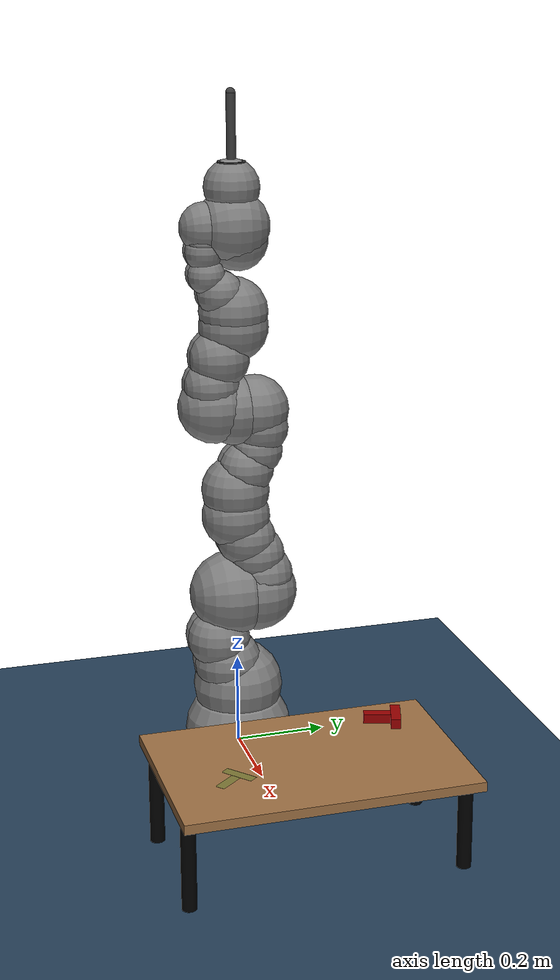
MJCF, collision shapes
<?xml version="1.0" ?>
<mujoco model="iiwa14_scene">

    <include file="kuka_iiwa_14/iiwa14_stick.xml"/>
    <include file="table.xml"/>

    <statistic center="0.2 0 0.2" extent="1.0"/>

    <visual>
        <headlight diffuse="0.3 0.3 0.3" ambient="0.2 0.2 0.2" specular="0 0 0"/>
        <rgba haze="0.15 0.25 0.35 1"/>
        <global azimuth="-120" elevation="-20"/>
        <quality shadowsize="0"/>
    </visual>

    <asset>
        <texture type="skybox" builtin="gradient" rgb1="0.3 0.5 0.7" rgb2="0 0 0" width="512" height="3072"/>
        <texture type="2d" name="groundplane" builtin="checker" mark="edge" rgb1="0.2 0.3 0.4" rgb2="0.1 0.2 0.3"
          markrgb="0.8 0.8 0.8" width="300" height="300"/>
        <material name="groundplane" texture="groundplane" texuniform="true" texrepeat="5 5" reflectance="0.2"/>
            <texture type="2d" name="floor_texture" builtin="checker" mark="edge" rgb1="0.2 0.3 0.4" rgb2="0.1 0.2 0.3"  markrgb="0.8 0.8 0.8" width="300" height="300"/>
        <material name="floor_material" texture="floor_texture" texuniform="true" texrepeat="5 5" reflectance="0.2"/>

    </asset>

    <worldbody>

            <site name="eef_target" pos="0.5 0.0 0.23" rgba="0 0 0 0 "/>

        <light pos="0 0 4.5" dir="0 0 -1" directional="true"/>
         <light pos="0 4.5 0.6" dir="0 -1 0" directional="true"/>
        <light pos="0 -4.5 0.6" dir="0 1 0" directional="true"/>

            <geom name="floor" pos="0.2 0 0" size="1 1 0.05" type="plane" material="floor_material"/>

            <camera name="side_camera" pos="0.21156062 -0.38533568  0.5734195" quat="0.83812764  0.36486969 -0.13685453 -0.3816844" mode="fixed" fovy="58"/>
            <camera name="front_camera" pos="1 0.0 0.485"  quat="0.6 0.387 0.387 0.6"  mode="fixed" fovy="58"/>

        <body name="T_outline" pos="0.58 -0.15 0.21" euler="0 0 0.7">
            <geom name="T_outline_horizontal" type="box" pos="0 0 0" size="0.035 0.01 0.0001" rgba="0 0.6 0 0.2" contype="0" conaffinity="0"/>
            <geom name="T_outline_vertical" type="box" pos="0 -0.0375 0" size="0.01 0.0275 0.0001" rgba="0 0.6 0 0.2" contype="0" conaffinity="0"/>
        </body>

        <body name="T" pos="0.5 0.2 0.25" euler="0 0 -0.3">
          <joint name="T_joint" type="free" damping="0.001"/>
            <geom name="T_horizontal" type="box" pos="0 0 0" size="0.035 0.01 0.01" rgba="0.6 0 0 1.0" mass="0.005"/>
            <geom name="T_vertical" type="box" pos="0 -0.0375 0" size="0.01 0.0275 0.01" rgba="0.6 0 0 1.0" mass="0.005"/>
        </body>

    </worldbody>
</mujoco>

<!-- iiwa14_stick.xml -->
<mujoco model="iiwa14">

  <compiler angle="radian" meshdir="kuka_iiwa_14/assets"  autolimits="true"/>

  <option integrator="implicitfast"/>

  <default>
    <default class="iiwa">
      <default class="visual">
        <geom type="mesh" contype="0" conaffinity="0" group="2" material="gray"/>
      </default>
      <default class="collision">
        <geom group="3"/>
      </default>
      <joint axis="0 0 1"/>
      <default class="joint1">
        <joint range="-2.96706 2.96706"/>
        <default class="joint2">
          <joint range="-2.0944 2.0944"/>
        </default>
      </default>
      <default class="joint3">
        <joint range="-3.05433 3.05433"/>
      </default>
    </default>

    <default class="2f85">
      <mesh scale="0.001 0.001 0.001"/>
      <general biastype="affine"/>

      <joint axis="1 0 0"/>
      <default class="driver">
        <joint range="0 0.8" armature="0.005" damping="0.1" solimplimit="0.95 0.99 0.001" solreflimit="0.005 1"/>
      </default>
      <default class="follower">
        <joint range="-0.872664 0.872664" armature="0.001" pos="0 -0.018 0.0065" solimplimit="0.95 0.99 0.001" solreflimit="0.005 1"/>
      </default>
      <default class="spring_link">
        <joint range="-0.29670597283 0.8" armature="0.001" stiffness="0.05" springref="2.62" damping="0.00125"/>
      </default>
      <default class="coupler">
        <joint range="-1.57 0" armature="0.001" solimplimit="0.95 0.99 0.001" solreflimit="0.005 1"/>
      </default>

      <default class="2f85/visual">
        <geom type="mesh" contype="0" conaffinity="0" group="2"/>
      </default>
      <default class="2f85/collision">
        <geom type="mesh" group="3"/>
        <default class="pad_box1">
          <geom mass="0" type="box" pos="0 -0.0026 0.028125" size="0.011 0.004 0.009375" friction="0.7"
            solimp="0.95 0.99 0.001" solref="0.004 1" priority="1" rgba="0.55 0.55 0.55 1"/>
        </default>
        <default class="pad_box2">
          <geom mass="0" type="box" pos="0 -0.0026 0.009375" size="0.011 0.004 0.009375" friction="0.6"
            solimp="0.95 0.99 0.001" solref="0.004 1" priority="1" rgba="0.45 0.45 0.45 1"/>
        </default>
      </default>
    </default>

  </default>

  <asset>
    <material name="gray" rgba="0.4 0.4 0.4 1"/>
    <material name="light_gray" rgba="0.6 0.6 0.6 1"/>
    <material name="black" rgba="0 0 0 1"/>
    <material name="orange" rgba="1 0.423529 0.0392157 1"/>

   <material name="metal" rgba="0.58 0.58 0.58 1"/>
    <material name="silicone" rgba="0.1882 0.1882 0.1882 1"/>
    <material name="2f85/gray" rgba="0.4627 0.4627 0.4627 1"/>
    <material name="2f85/black" rgba="0.149 0.149 0.149 1"/>

    <mesh class="2f85" file="base_mount.stl"/>
    <mesh class="2f85" file="base.stl"/>
    <mesh class="2f85" file="driver.stl"/>
    <mesh class="2f85" file="coupler.stl"/>
    <mesh class="2f85" file="follower.stl"/>
    <mesh class="2f85" file="pad.stl"/>
    <mesh class="2f85" file="silicone_pad.stl"/>
    <mesh class="2f85" file="spring_link.stl"/>

    <mesh file="link_0.obj"/>
    <mesh file="link_1.obj"/>
    <mesh file="link_2_orange.obj"/>
    <mesh file="link_2_grey.obj"/>
    <mesh file="link_3.obj"/>
    <mesh file="band.obj"/>
    <mesh file="kuka.obj"/>
    <mesh file="link_4_orange.obj"/>
    <mesh file="link_4_grey.obj"/>
    <mesh file="link_5.obj"/>
    <mesh file="link_6_orange.obj"/>
    <mesh file="link_6_grey.obj"/>
    <mesh file="link_7.obj"/>
  </asset>

  <worldbody>
    <body name="base"  pos="0.0 0.0 0.0" childclass="iiwa">
      <inertial mass="5" pos="-0.1 0 0.07" diaginertia="0.05 0.06 0.03"/>
      <geom class="visual" mesh="link_0"/>
      <geom class="collision" size="0.12" pos="0 0 0.03"/>
      <geom class="collision" size="0.08" pos="-0.08 0 0.103"/>
      <geom class="collision" size="0.08" pos="-0.08 0 0.04"/>
      <geom class="collision" size="0.1" pos="0 0 0.14"/>
      <body name="link1" pos="0 0 0.1575">
        <inertial mass="5.76" pos="0 -0.03 0.12" diaginertia="0.0333 0.033 0.0123"/>
        <joint name="joint1" class="joint1"/>
        <geom class="visual" mesh="link_1"/>
        <geom class="collision" size="0.08" pos="0 0 -0.0005"/>
        <geom class="collision" size="0.075" pos="0.01 -0.025 0.0425"/>
        <geom class="collision" size="0.075" pos="-0.01 -0.025 0.0425"/>
        <geom class="collision" size="0.07" pos="0.01 -0.045 0.1025"/>
        <geom class="collision" size="0.07" pos="-0.01 -0.045 0.1025"/>
        <body name="link2" pos="0 0 0.2025" quat="0 0 1 1">
          <inertial mass="6.35" pos="0.0003 0.059 0.042" diaginertia="0.0305 0.0304 0.011" quat="0 0 1 1"/>
          <joint name="joint2" class="joint2"/>
          <geom class="visual" material="orange" mesh="link_2_orange"/>
          <geom class="visual" mesh="link_2_grey"/>
          <geom class="collision" size="0.095" pos="0 0 -0.01"/>
          <geom class="collision" size="0.09" pos="0 0 0.045"/>
          <geom class="collision" size="0.07" pos="-0.01 0.04 0.054"/>
          <geom class="collision" size="0.065" pos="-0.01 0.09 0.04"/>
          <geom class="collision" size="0.065" pos="-0.01 0.13 0.02"/>
          <geom class="collision" size="0.07" pos="0.01 0.04 0.054"/>
          <geom class="collision" size="0.065" pos="0.01 0.09 0.04"/>
          <geom class="collision" size="0.065" pos="0.01 0.13 0.02"/>
          <geom class="collision" size="0.075" pos="0 0.18 0"/>
          <body name="link3" pos="0 0.2045 0" quat="0 0 1 1">
            <inertial mass="3.5" pos="0 0.03 0.13" diaginertia="0.025 0.0238 0.0076"/>
            <joint name="joint3" class="joint1"/>
            <geom class="visual" mesh="link_3"/>
            <geom class="visual" material="light_gray" mesh="band"/>
            <geom class="visual" material="black" mesh="kuka"/>
            <geom class="collision" size="0.075" pos="0 0 0.0355"/>
            <geom class="collision" size="0.06" pos="0.01 0.023 0.0855"/>
            <geom class="collision" size="0.055" pos="0.01 0.048 0.1255"/>
            <geom class="collision" size="0.06" pos="0.01 0.056 0.1755"/>
            <geom class="collision" size="0.06" pos="-0.01 0.023 0.0855"/>
            <geom class="collision" size="0.055" pos="-0.01 0.048 0.1255"/>
            <geom class="collision" size="0.06" pos="-0.01 0.056 0.1755"/>
            <geom class="collision" size="0.075" pos="0 0.045 0.2155"/>
            <geom class="collision" size="0.075" pos="0 0 0.2155"/>
            <body name="link4" pos="0 0 0.2155" quat="1 1 0 0">
              <inertial mass="3.5" pos="0 0.067 0.034" diaginertia="0.017 0.0164 0.006" quat="1 1 0 0"/>
              <joint name="joint4" class="joint2"/>
              <geom class="visual" material="orange" mesh="link_4_orange"/>
              <geom class="visual" mesh="link_4_grey"/>
              <geom class="collision" size="0.078" pos="0 0.01 0.046"/>
              <geom class="collision" size="0.06" pos="0.01 0.06 0.052"/>
              <geom class="collision" size="0.065" pos="0.01 0.12 0.034"/>
              <geom class="collision" size="0.06" pos="-0.01 0.06 0.052"/>
              <geom class="collision" size="0.065" pos="-0.01 0.12 0.034"/>
              <geom class="collision" size="0.075" pos="0 0.184 0"/>
              <body name="link5" pos="0 0.1845 0" quat="0 0 1 1">
                <inertial mass="3.5" pos="0.0001 0.021 0.076" diaginertia="0.01 0.0087 0.00449"/>
                <joint name="joint5" class="joint1"/>
                <geom class="visual" mesh="link_5"/>
                <geom class="visual" material="light_gray" mesh="band"/>
                <geom class="visual" material="black" mesh="kuka"/>
                <geom class="collision" size="0.075" pos="0 0 0.0335"/>
                <geom class="collision" size="0.05" pos="-0.012 0.031 0.0755"/>
                <geom class="collision" size="0.05" pos="0.012 0.031 0.0755"/>
                <geom class="collision" size="0.04" pos="-0.012 0.06 0.1155"/>
                <geom class="collision" size="0.04" pos="0.012 0.06 0.1155"/>
                <geom class="collision" size="0.04" pos="-0.01 0.065 0.1655"/>
                <geom class="collision" size="0.04" pos="0.01 0.065 0.1655"/>
                <geom class="collision" size="0.035" pos="-0.012 0.065 0.1855"/>
                <geom class="collision" size="0.035" pos="0.012 0.065 0.1855"/>
                <body name="link6" pos="0 0 0.2155" quat="1 1 0 0">
                  <inertial mass="1.8" pos="0 0.0006 0.0004" diaginertia="0.0049 0.0047 0.0036" quat="1 1 0 0"/>
                  <joint name="joint6" class="joint2"/>
                  <geom class="visual" material="orange" mesh="link_6_orange"/>
                  <geom class="visual" mesh="link_6_grey"/>
                  <geom class="collision" size="0.055" pos="0 0 -0.059"/>
                  <geom class="collision" size="0.065" pos="0 -0.03 0.011"/>
                  <geom class="collision" size="0.08"/>
                  <body name="link7" pos="0 0.081 0" quat="0 0 1 1">
                    <inertial mass="1.2" pos="0 0 0.02" diaginertia="0.001 0.001 0.001"/>
                    <joint name="joint7" class="joint3"/>
                    <geom class="visual" mesh="link_7"/>
                    <geom class="collision" size="0.06" pos="0 0 0.001"/>
                    <body name="attachment" pos="0 0 0.045" quat="0 0 0 1">
                      <site name="attachment_site" rgba="1 0 0 1" size="0.01" group="1"/>

                     <body name="cylinder" pos="0 0 0.0">

                        <geom name="cylinder_geom" type="cylinder" size="0.03 0.01" rgba="0.25 0.25 0.25 1"/>

                        <camera name="top_camera" pos="0.05 0.0 0.01" quat="0.0 0.7071 0.7071 0.0" mode="fixed" fovy="120"/>

                        <body name="stick_body" pos="0 0 0.0">
                         <geom name="stick" type="cylinder" size="0.01 0.15" rgba="0.25 0.25 0.25 0.8"/>
                         <geom pos="0 0 0.15" size="0.01" type="sphere" mass="0.1" friction="1 1 1" rgba="0.25 0.25 0.25 1.0"/>
                         <site name="eef" rgba="1 0 0 0" pos="0 0 0.15" size="0.01" group="1"/>
                        </body>

                     </body>

                    </body>
                  </body>
                </body>
              </body>
            </body>
          </body>
        </body>
      </body>
    </body>
  </worldbody>

  <contact>
    <exclude body1="base" body2="link1"/>
    <exclude body1="base" body2="link2"/>
    <exclude body1="base" body2="link3"/>
    <exclude body1="link1" body2="link3"/>
    <exclude body1="link3" body2="link5"/>
    <exclude body1="link4" body2="link7"/>
    <exclude body1="link5" body2="link7"/>
  </contact>

   <actuator>
    <motor name="joint1" joint="joint1" ctrlrange="-320 320"/>
    <motor name="joint2" joint="joint2" ctrlrange="-320 320"/>
    <motor name="joint3" joint="joint3" ctrlrange="-176 176"/>
    <motor name="joint4" joint="joint4" ctrlrange="-176 176"/>
    <motor name="joint5" joint="joint5" ctrlrange="-110 110"/>
    <motor name="joint6" joint="joint6" ctrlrange="-40 40"/>
    <motor name="joint7" joint="joint7" ctrlrange="-40 40"/>
  </actuator>

  <keyframe>
    <key name="home"/>
  </keyframe>
</mujoco>

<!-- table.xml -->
<mujoco model="table">
    <asset>
        <texture name="wood" type="2d" file="../Environment/common/textures/wood0.png"/>
        <material name="wood_mat" rgba='0.9 0.9 0.9 1' texture="wood" texrepeat="5 5" reflectance="0.0"/>
        <material name="leg_mat" rgba='0.0 0.0 0.0 1' reflectance="0.0"/>
    </asset>
    <worldbody>
        <!-- Table Top -->
        <body name="table" pos="0.55 0.0 0.2">
            <geom name="table_top" type="box" size="0.2 0.3 0.01" material="wood_mat"/>
            <!-- Table Legs -->
            <body name="leg1" pos="-0.14 -0.28 -0.1">
                <geom type="cylinder" size="0.015 0.1 0.1" material="leg_mat"/>
            </body>
            <body name="leg2" pos="0.14 -0.28 -0.1">
                <geom type="cylinder" size="0.015 0.1 0.1" material="leg_mat"/>
            </body>
            <body name="leg3" pos="-0.14 0.28 -0.1">
                <geom type="cylinder" size="0.015 0.1 0.1" material="leg_mat"/>
            </body>
            <body name="leg4" pos="0.14 0.28 -0.1">
                <geom type="cylinder" size="0.015 0.1 0.1" material="leg_mat"/>
            </body>
        </body>
    </worldbody>
</mujoco>
